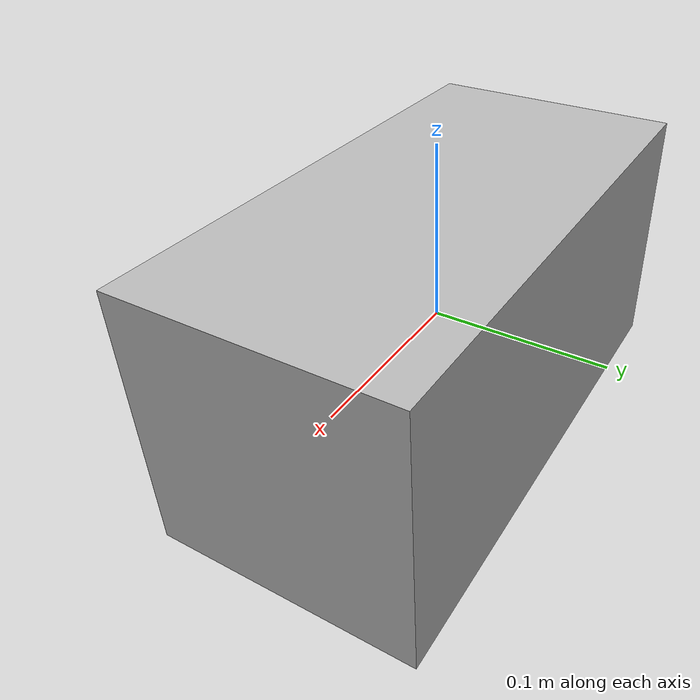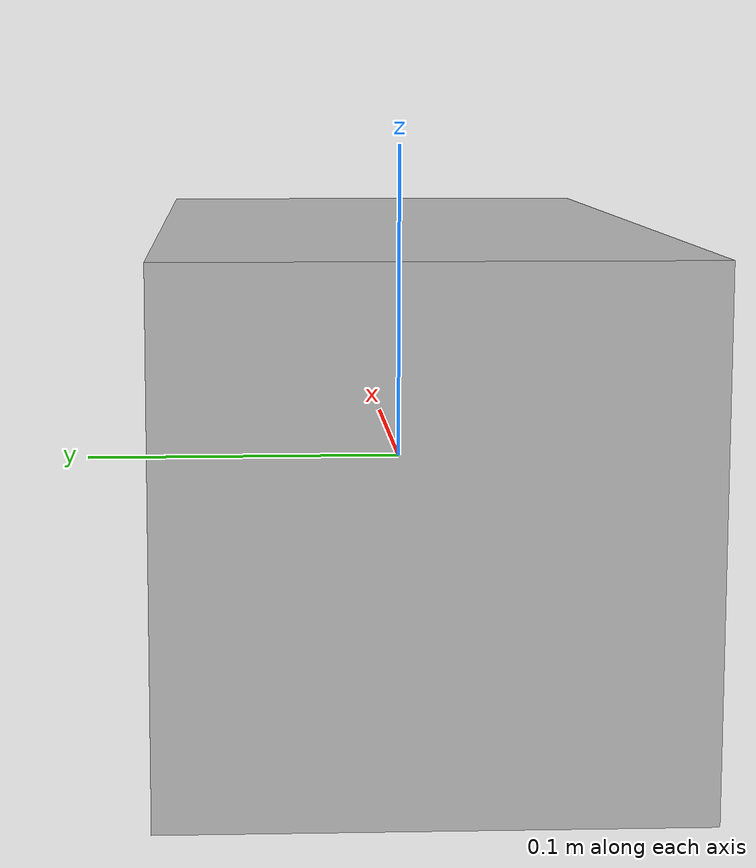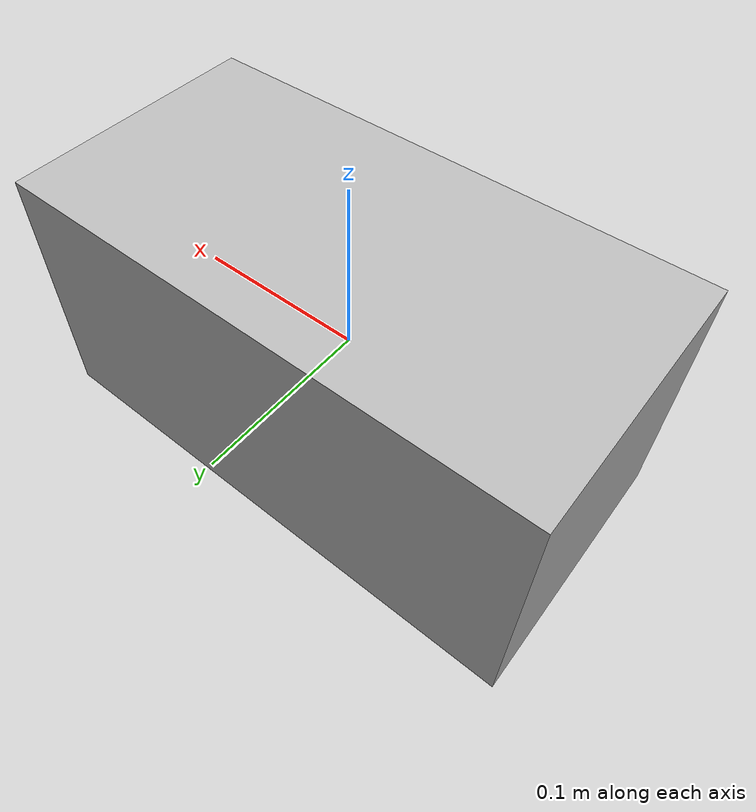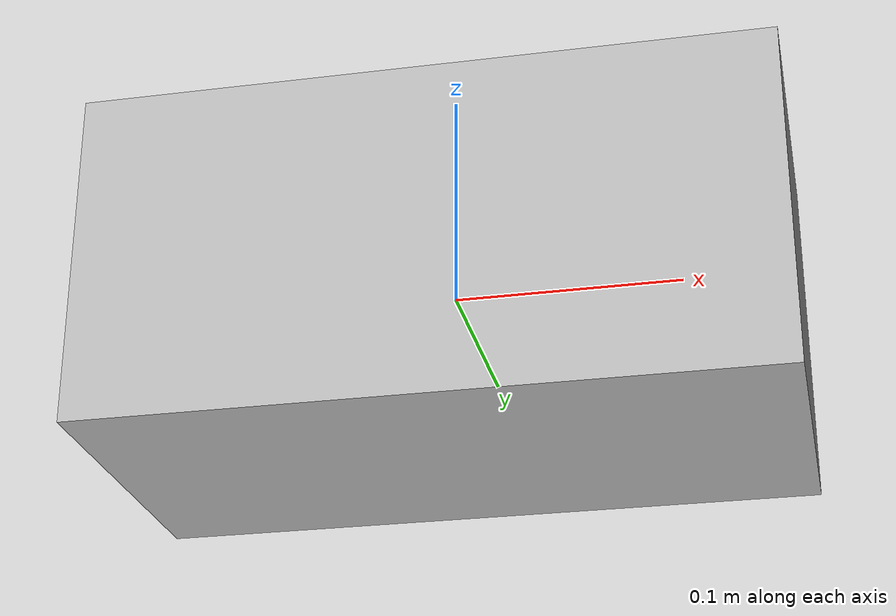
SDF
<?xml version='1.0'?>
<sdf version="1.4">
<model name="box">
  <pose>0 0 0 0 0 0</pose>
  <static>true</static>
    <link name="link">
      <inertial>
        <mass>1.0</mass>
        <inertia> <!-- inertias are tricky to compute -->
          <!-- http://gazebosim.org/tutorials?tut=inertia&cat=build_robot -->
          <ixx>0.083</ixx>       <!-- for a box: ixx = 0.083 * mass * (y*y + z*z) -->
          <ixy>0.0</ixy>         <!-- for a box: ixy = 0 -->
          <ixz>0.0</ixz>         <!-- for a box: ixz = 0 -->
          <iyy>0.083</iyy>       <!-- for a box: iyy = 0.083 * mass * (x*x + z*z) -->
          <iyz>0.0</iyz>         <!-- for a box: iyz = 0 -->
          <izz>0.083</izz>       <!-- for a box: izz = 0.083 * mass * (x*x + y*y) -->
        </inertia>
      </inertial>
      <collision name="collision">
        <geometry>
          <box>
            <size>0.3 0.15 0.15</size>
          </box>
        </geometry>
      </collision>
      <visual name="visual">
        <material>
          <script>Gazebo/White</script>
        </material>
        <geometry>
          <box>
            <size>0.3 0.15 0.15</size>
          </box>
        </geometry>
      </visual>
    </link>
  </model>
</sdf>
